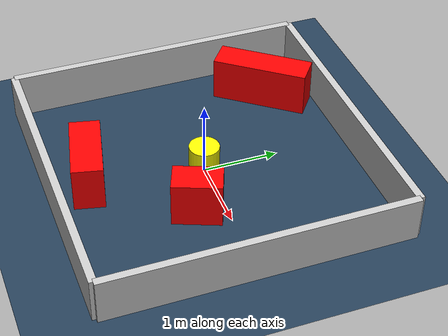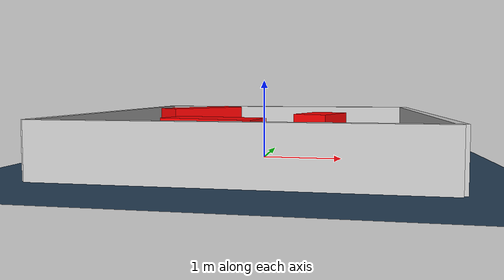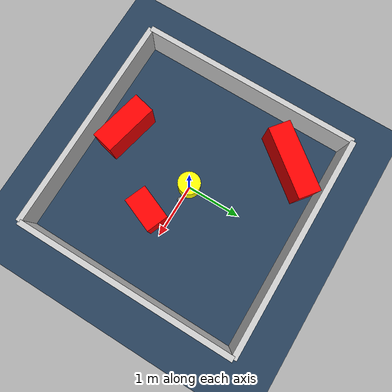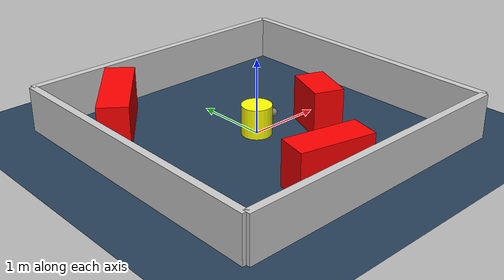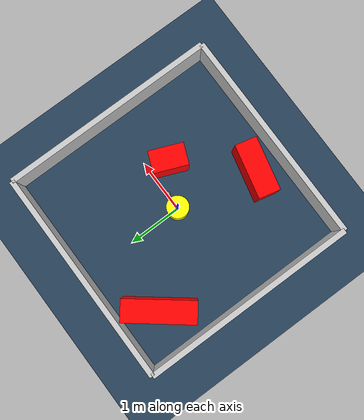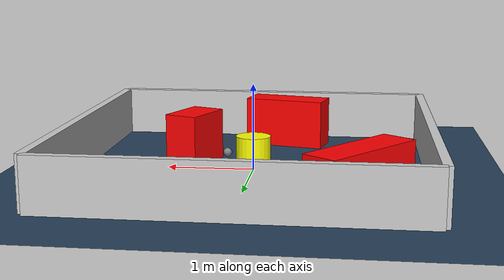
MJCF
<?xml version="1.0" ?>
<mujoco model="generated_environment">
  <option timestep="0.01" integrator="RK4" cone="elliptic"/>
  <default>
    <geom density="1"/>
  </default>
  <asset>
    <texture builtin="gradient" height="3072" rgb1="0.3 0.5 0.7" rgb2="0 0 0" type="skybox" width="512"/>
    <texture builtin="checker" height="300" mark="edge" markrgb="0.8 0.8 0.8" name="groundplane" rgb1="0.2 0.3 0.4" rgb2="0.1 0.2 0.3" type="2d" width="300"/>
    <material name="groundplane" reflectance="0.2" texrepeat="5 5" texture="groundplane" texuniform="true"/>
    <material name="robot" rgba="0.0 1.0 0.0 1"/>
  </asset>
  <worldbody>
    <light dir="0 0 -1" directional="true" pos="0 0 1.5"/>
    <geom condim="4" friction="1.0 0.005 0.001" material="groundplane" name="floor" size="0 0 0.05" type="plane"/>
    <body name="walls">
      <geom name="wall_1" condim="4" pos="-2.0 0.0 0.3" rgba="0.800000011920929 0.800000011920929 0.800000011920929 1.0" size="0.05 2.0 0.3" type="box"/>
      <geom name="wall_2" condim="4" pos="2.0 0.0 0.3" rgba="0.800000011920929 0.800000011920929 0.800000011920929 1.0" size="0.05 2.0 0.3" type="box"/>
      <geom name="wall_3" condim="4" pos="0.0 -2.0 0.3" rgba="0.800000011920929 0.800000011920929 0.800000011920929 1.0" size="2.0 0.05 0.3" type="box"/>
      <geom name="wall_4" condim="4" pos="0.0 2.0 0.3" rgba="0.800000011920929 0.800000011920929 0.800000011920929 1.0" size="2.0 0.05 0.3" type="box"/>
    </body>
    <body name="robot">
      <joint name="joint_x" type="slide" pos="0 0 0" axis="1 0 0"/>
      <joint name="joint_y" type="slide" pos="0 0 0" axis="0 1 0"/>
      <geom name="robot" type="sphere" pos="0.3 0.0 0.2" size="0.05" mass="5." friction="1.0 0.005 0.0001" condim="4" rgba="0.5 0.5 0.5 1.0"/>
      <site name="sensor_ball"/>
    </body>
    <body name="obstacle_movable_1">
      <geom name="obstacle_movable_1" condim="4" pos="0.0 0.0 0.2" euler="0 0 0.0" friction="1.0 0.005 0.001" rgba="1.0 1.0 0.0 1.0" size="0.2 0.2 0.0" type="cylinder" mass="0.1"/>
      <joint type="free"/>
    </body>
    <body name="obstacle_2_static">
      <geom name="obstacle_2_static" condim="4" pos="0.7519756273895468 -0.35826174064554994 0.3" euler="0 0 67.94795851441022" friction="1.0 0.005 0.001" rgba="1 0 0 1" size="0.3159295231440802 0.2 0.3" type="box"/>
    </body>
    <body name="obstacle_3_static">
      <geom name="obstacle_3_static" condim="4" pos="-0.27932732603280863 -1.4728848623147601 0.3" euler="0 0 347.0738262965175" friction="1.0 0.005 0.001" rgba="1 0 0 1" size="0.4978686403548198 0.2 0.3" type="box"/>
    </body>
    <body name="obstacle_4_static">
      <geom name="obstacle_4_static" condim="4" pos="-1.2225105569092058 1.2956153001549826 0.3" euler="0 0 51.878193000060946" friction="1.0 0.005 0.001" rgba="1 0 0 1" size="0.6452280209769146 0.2 0.3" type="box"/>
    </body>
  </worldbody>
  <actuator>
    <motor name="actuator_x" joint="joint_x" gear="1" ctrlrange="-1 1"/>
    <motor name="actuator_y" joint="joint_y" gear="1" ctrlrange="-1 1"/>
  </actuator>
</mujoco>
